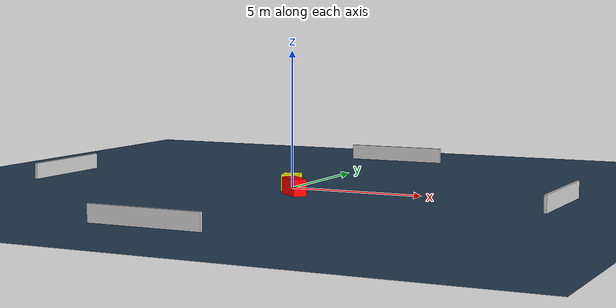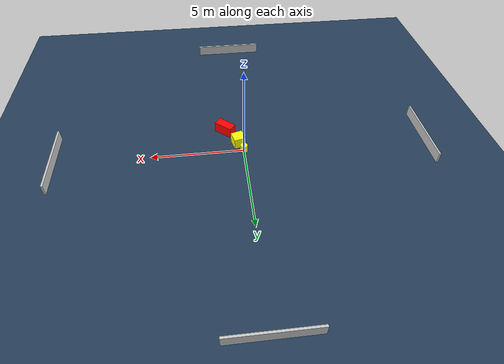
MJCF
<?xml version="1.0" ?>
<mujoco model="generated_environment">
  <option timestep="0.01" integrator="RK4" cone="elliptic"/>
  <default>
    <geom density="1"/>
  </default>
  <asset>
    <texture builtin="gradient" height="3072" name="skybox" rgb1="0.3 0.5 0.7" rgb2="0 0 0" type="skybox" width="512"/>
    <texture builtin="checker" height="300" name="groundplane" rgb1="0.2 0.3 0.4" rgb2="0.1 0.2 0.3" type="2d" width="300"/>
    <material name="groundplane" reflectance="0.2" texrepeat="5 5" texture="groundplane"/>
  </asset>
  <worldbody>
    <light dir="0 0 -1" directional="true" pos="0 0 1.5"/>
    <geom condim="3" friction="0.5 0.005 0.001" material="groundplane" name="floor" pos="0 0 0" size="0 0 0.05" type="plane"/>
    <body name="walls">
      <geom name="wall_1" condim="4" pos="-10.0 0.0 0.3" rgba="0.800000011920929 0.800000011920929 0.800000011920929 1.0" size="0.05 2.0 0.3" type="box"/>
      <geom name="wall_2" condim="4" pos="10.0 0.0 0.3" rgba="0.800000011920929 0.800000011920929 0.800000011920929 1.0" size="0.05 2.0 0.3" type="box"/>
      <geom name="wall_3" condim="4" pos="0.0 -10.0 0.3" rgba="0.800000011920929 0.800000011920929 0.800000011920929 1.0" size="2.0 0.05 0.3" type="box"/>
      <geom name="wall_4" condim="4" pos="0.0 10.0 0.3" rgba="0.800000011920929 0.800000011920929 0.800000011920929 1.0" size="2.0 0.05 0.3" type="box"/>
    </body>
    <body name="robot">
      <joint name="joint_x" type="slide" pos="0 0 0" axis="1 0 0"/>
      <joint name="joint_y" type="slide" pos="0 0 0" axis="0 1 0"/>
      <geom name="robot" type="cylinder" pos="0.0 0.0 0.2" size="0.2 0.2 0.0" mass="5.0" friction="1.0 0.005 0.0001" condim="4" rgba="1.0 1.0 0.0 1.0"/>
    </body>
    <body name="obstacle_1_movable">
      <geom name="obstacle_1_movable" condim="4" pos="0.2527018010838688 -0.5626347364711183 0.3" euler="0 0 104.7731088052737" friction="0.0 0.005 0.001" rgba="1.0 1.0 0.0 1.0" size="0.3236752024548464 0.312921330540935 0.3" type="box" mass="0.1"/>
      <joint type="free"/>
    </body>
    <body name="obstacle_2_static">
      <geom name="obstacle_2_static" condim="4" pos="0.8851836567809948 -1.6243365690644824 0.3" euler="0 0 49.056220436773586" friction="0.0 0.005 0.001" rgba="1.0 0.0 0.0 1.0" size="0.24765377281759124 0.5229472053634303 0.3" type="box"/>
    </body>
  </worldbody>
  <actuator>
    <motor name="actuator_x" joint="joint_x" gear="1" ctrlrange="-1 1"/>
    <motor name="actuator_y" joint="joint_y" gear="1" ctrlrange="-1 1"/>
  </actuator>
</mujoco>
